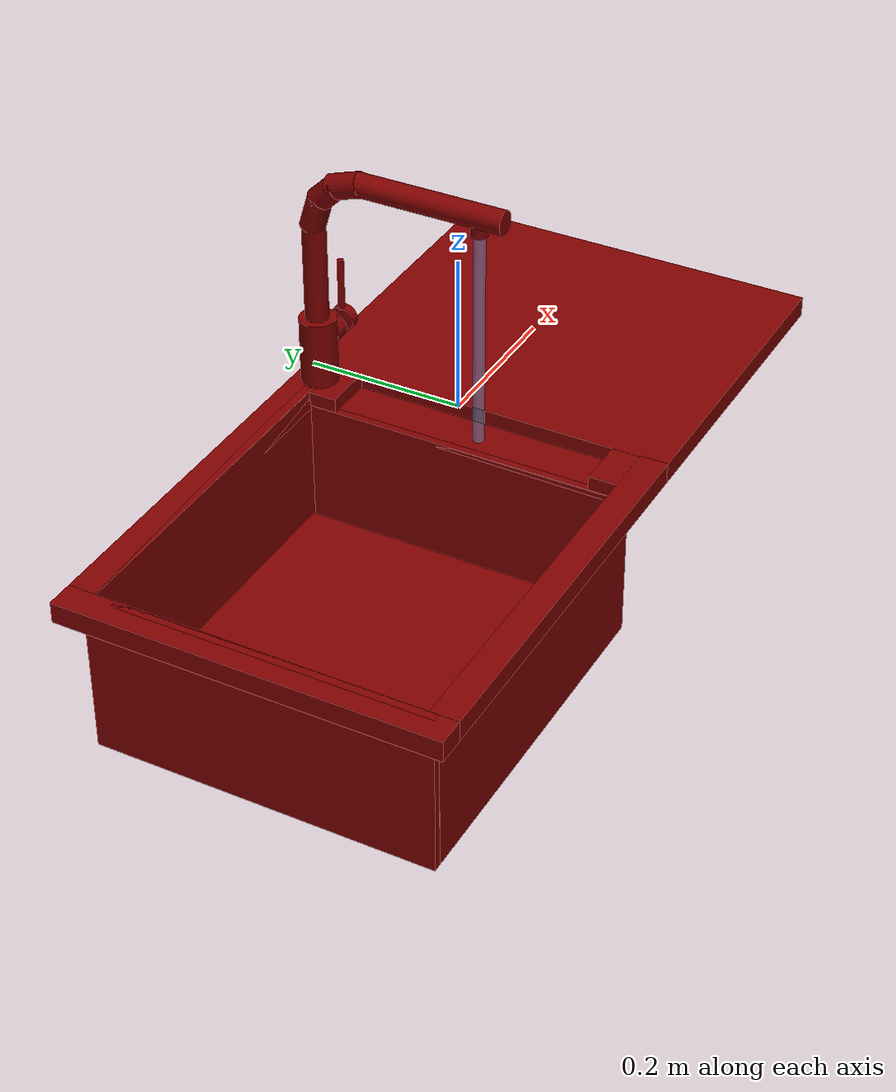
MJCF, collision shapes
<?xml version='1.0' encoding='UTF-8'?>
<mujoco model="model">
  <option timestep="0.002" gravity="0.0 0.0 -9.81"/>
  <compiler angle="radian"/>
  <asset>
    <mesh file="visuals/handle.obj" name="handle_vis"/>
    <mesh file="visuals/Body001.obj" name="Body001_vis"/>
    <mesh file="visuals/spout.obj" name="spout_vis"/>
    <texture file="visuals/T_BC001.png" name="Body001_material" type="2d"/>
    <material name="Body001_material" rgba="1 1 1 1.0" texture="Body001_material" shininess="0.1" specular="4"/>
    <texture file="visuals/T_BC001.png" name="handle_material" type="2d"/>
    <material name="handle_material" rgba="1 1 1 1.0" texture="handle_material" shininess="0.1" specular="4"/>
    <texture file="visuals/T_BC001.png" name="spout_material" type="2d"/>
    <material name="spout_material" rgba="1 1 1 1.0" texture="spout_material" shininess="0.1" specular="4"/>
  </asset>
  <default>
    <default class="visual">
      <geom conaffinity="0" contype="0" group="1" type="mesh"/>
    </default>
    <default class="collision">
      <geom group="0" rgba="0.5 0 0 0.5" solimp="0.998 0.998 0.001" solref="0.001 2"/>
    </default>
    <default class="spawn">
      <geom group="0" rgba="1 1 1 0.5" contype="0" conaffinity="0"/>
      <site group="0" rgba="1 1 1 0.5"/>
    </default>
    <default class="region">
      <geom group="1" conaffinity="0" contype="0" rgba="0 1 0 0"/>
    </default>
  </default>
  <worldbody>
    <body>
      <body name="object">
        <geom mesh="Body001_vis" type="mesh" solimp="0.998 0.998 0.001" solref="0.001 1" friction="0.95 0.3 0.1" class="visual" material="Body001_material"/>
        <geom class="collision" type="box" pos="-0.46494564414024353 -3.725290298461914e-08 -0.15274174511432648" size="0.00526255089789629 0.22168999910354614 0.1083621233701706" quat="1.0 0.0 0.0 0.0"/>
        <geom class="collision" type="box" pos="0.2809807062149048 0.0 -0.05791960656642914" size="0.21534903347492218 0.2463299036026001 0.013540014624595642" quat="1.0 0.0 0.0 0.0"/>
        <geom class="collision" type="box" pos="-0.22511747479438782 0.21577562391757965 -0.15274173021316528" size="0.23433896899223328 0.005914333276450634 0.10836213827133179" quat="1.0 0.0 0.0 0.0"/>
        <geom class="collision" type="box" pos="-0.22511747479438782 -0.21584121882915497 -0.15274174511432648" size="0.23433896899223328 0.005848739296197891 0.1083620935678482" quat="1.0 0.0 0.0 0.0"/>
        <geom class="collision" type="box" pos="0.004479175433516502 -0.0001220703125 -0.1622358113527298" size="0.004742255434393883 0.20761872828006744 0.09886802732944489" quat="1.0 0.0 0.0 0.0"/>
        <geom class="collision" type="box" pos="-0.22905099391937256 -0.0001220703125 -0.24504411220550537" size="0.23025718331336975 0.20973381400108337 0.0160597562789917" quat="1.0 0.0 0.0 0.0"/>
        <geom class="collision" type="box" pos="-0.2297610491514206 -0.00018372759222984314 -0.25355565547943115" size="0.029758846387267113 0.0289392601698637 0.007548192515969276" quat="1.0 0.0 0.0 0.0"/>
        <geom class="collision" type="box" pos="0.03253858536481857 -0.19159090518951416 -0.05399749055504799" size="0.03280166536569595 0.018068870529532433 0.009617896750569344" quat="1.0 0.0 0.0 0.0"/>
        <geom class="collision" type="box" pos="0.03253858536481857 0.1905437558889389 -0.05399752035737038" size="0.03280166536569595 0.018068870529532433 0.009617866948246956" quat="1.0 0.0 0.0 0.0"/>
        <geom class="collision" type="cylinder" pos="0.06282471120357513 0.21369335055351257 0.011515638791024685" size="0.01693006418645382 0.010373175144195557" quat="0.7071068286895752 -0.0 0.7071067690849304 0.0"/>
        <geom class="collision" type="cylinder" pos="0.032461803406476974 0.21311423182487488 0.001127038151025772" size="0.023737186565995216 0.044803354889154434" quat="1.0 0.0 0.0 0.0"/>
        <geom class="collision" type="box" pos="-0.4779931306838989 -4.3213367462158203e-07 -0.05791971832513809" size="0.0183100588619709 0.2463027536869049 0.013540113344788551" quat="1.0 0.0 0.0 0.0"/>
        <geom class="collision" type="box" pos="-0.19333596527576447 0.228084996342659 -0.05791974067687988" size="0.2661204934120178 0.018223706632852554 0.013540130108594894" quat="1.0 0.0 0.0 0.0"/>
        <geom class="collision" type="box" pos="-0.19583700597286224 -0.22815737128257751 -0.05791956186294556" size="0.26361942291259766 0.01816488616168499 0.013540089130401611" quat="1.0 0.0 0.0 0.0"/>
        <geom class="collision" type="box" pos="0.03317368030548096 -0.0001220703125 -0.06791914254426956" size="0.033436767756938934 0.20761872828006744 0.003540582722052932" quat="1.0 0.0 0.0 0.0"/>
        <body name="handle">
          <joint axis="1.0 0.0 0.0" pos="0.08706565946340561 0.213865727186203 0.011550354771316051" limited="true" name="handle_temp_joint" type="hinge" range="-0.7853981633974483 0.7853981633974483" damping="0.5" frictionloss="1" armature="2"/>
          <joint axis="0.0 1.0 0.0" pos="0.08706565946340561 0.213865727186203 0.011550354771316051" limited="true" name="handle_joint" type="hinge" range="0 0.5" damping="0.5" frictionloss="1" armature="2"/>
          <geom mesh="handle_vis" type="mesh" solimp="0.998 0.998 0.001" solref="0.001 1" friction="0.95 0.3 0.1" class="visual" material="handle_material"/>
          <geom class="collision" type="cylinder" pos="0.09450801461935043 0.21369335055351257 0.011515636928379536" size="0.01685892790555954 0.006536256521940231" quat="0.7071068286895752 -0.0 0.7071067690849304 0.0"/>
          <geom name="handle_main" class="collision" type="cylinder" pos="0.09118786454200745 0.21369335055351257 0.0617612823843956" size="0.004467882215976715 0.03439529985189438" quat="1.0 6.71794140316706e-08 6.145066907718233e-15 -6.717942113709796e-08"/>
        </body>
        <body name="spout">
          <joint axis="0.0 0.0 1.0" pos="0.032499492168426514 0.21374382078647614 0.15128037333488464" limited="true" name="spout_joint" range="-1.0471975511965976 1.0471975511965976" type="hinge" damping="10"/>
          <site type="cylinder" rgba="0.5 0.75 1 0.5" size="0.007500000298023224 0.2263500690460205" pos="0.03237338364124298 -0.010179027915000916 -0.0039896368980407715" name="water"/>
          <geom mesh="spout_vis" type="mesh" solimp="0.998 0.998 0.001" solref="0.001 1" friction="0.95 0.3 0.1" class="visual" material="spout_material"/>
          <geom class="collision" type="cylinder" pos="0.032461799681186676 0.21370676159858704 0.11349726468324661" size="0.0151570038869977 0.06713789701461792" quat="1.0 0.0 0.0 0.0"/>
          <geom class="collision" type="cylinder" pos="0.032461803406476974 0.05527316778898239 0.24607573449611664" size="0.015157007612287998 0.09822708368301392" quat="0.7071067094802856 0.70710688829422 0.0 0.0" name="spout_main"/>
          <geom class="collision" type="cylinder" pos="0.032461803406476974 0.1671609878540039 0.24007338285446167" size="0.016099071130156517 0.021583354100584984" quat="0.8109226226806641 0.5851534008979797 0.0 0.0"/>
          <geom class="collision" type="cylinder" pos="0.032461803406476974 0.19277259707450867 0.22381256520748138" size="0.016146332025527954 0.018798397853970528" quat="0.9223295450210571 0.38640424609184265 0.0 0.0"/>
          <geom class="collision" type="cylinder" pos="0.032461803406476974 0.2090616375207901 0.19464395940303802" size="0.016237551346421242 0.022440042346715927" quat="0.9891262054443359 0.14706917107105255 0.0 0.0"/>
          <geom class="collision" type="cylinder" pos="0.032461803406476974 -0.009760892949998379 0.23331312835216522" size="0.011198245920240879 0.01170522440224886" quat="7.549790126404332e-08 1.0 0.0 0.0"/>
        </body>
        <geom class="region" name="reg_basin" type="box" pos="-0.22999398224055767 -0.00014901906251907349 -0.13642670214176178" size="0.22314923985302448 0.2047745639681816 0.08804669773578644"/>
        <geom class="region" name="reg_main" type="box" pos="7.450580596923828e-09 0.0 -0.15274173021316528" size="0.49732975459098816 0.2473299185037613 0.1093621084690094"/>
      </body>
    </body>
  </worldbody>
  <actuator>
    <motor name="handle_joint_actuator" joint="handle_joint" gear="10"/>
    <motor name="handle_temp_joint_actuator" joint="handle_temp_joint" gear="10"/>
    <motor name="spout_joint_actuator" joint="spout_joint" gear="10"/>
  </actuator>
</mujoco>
